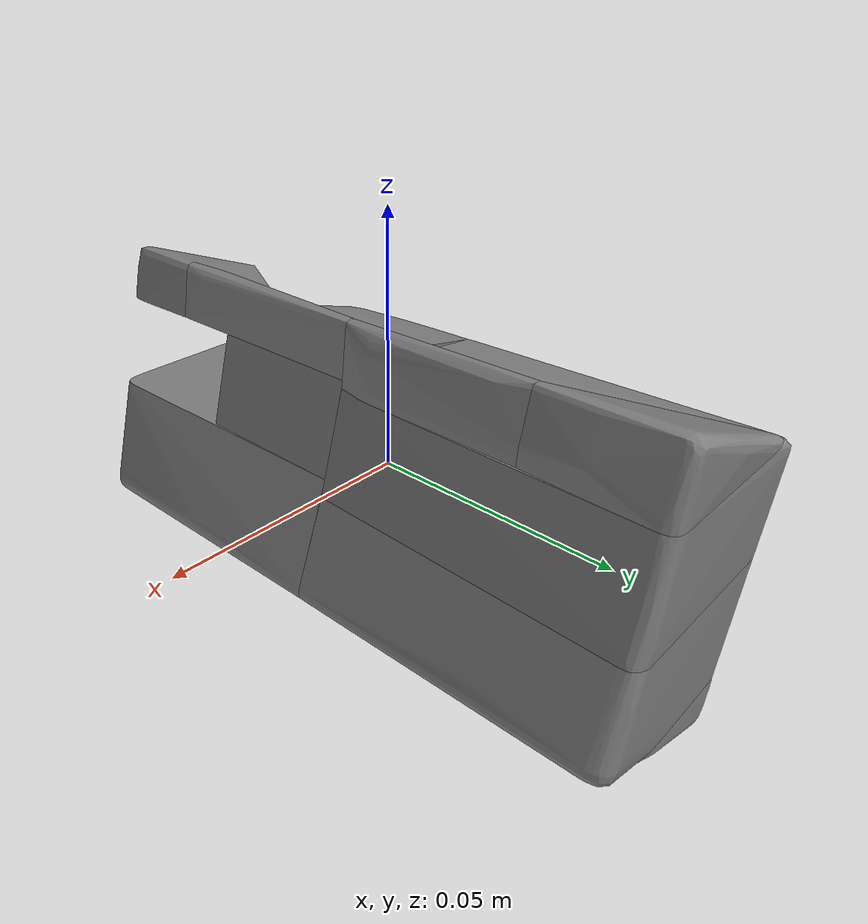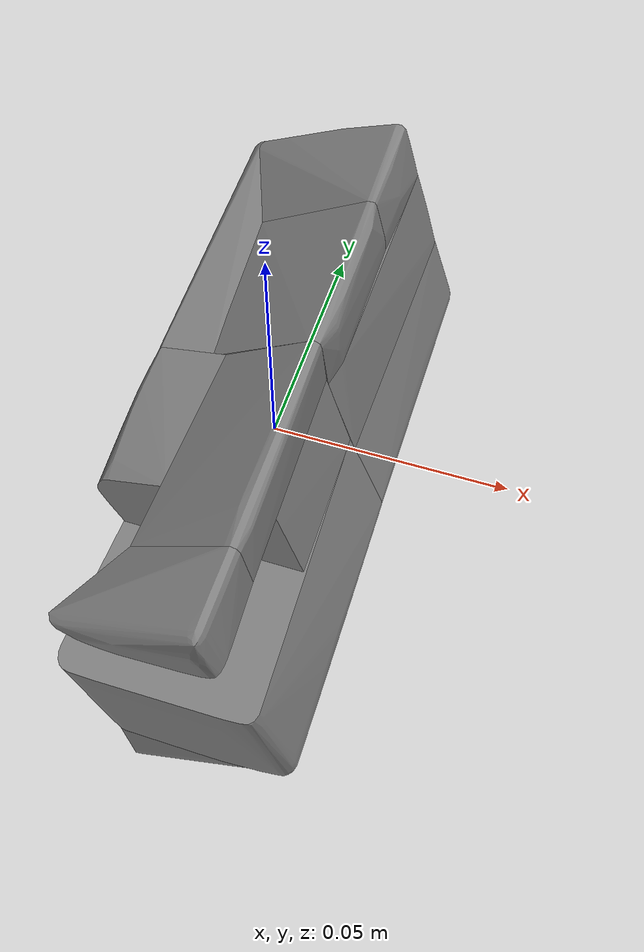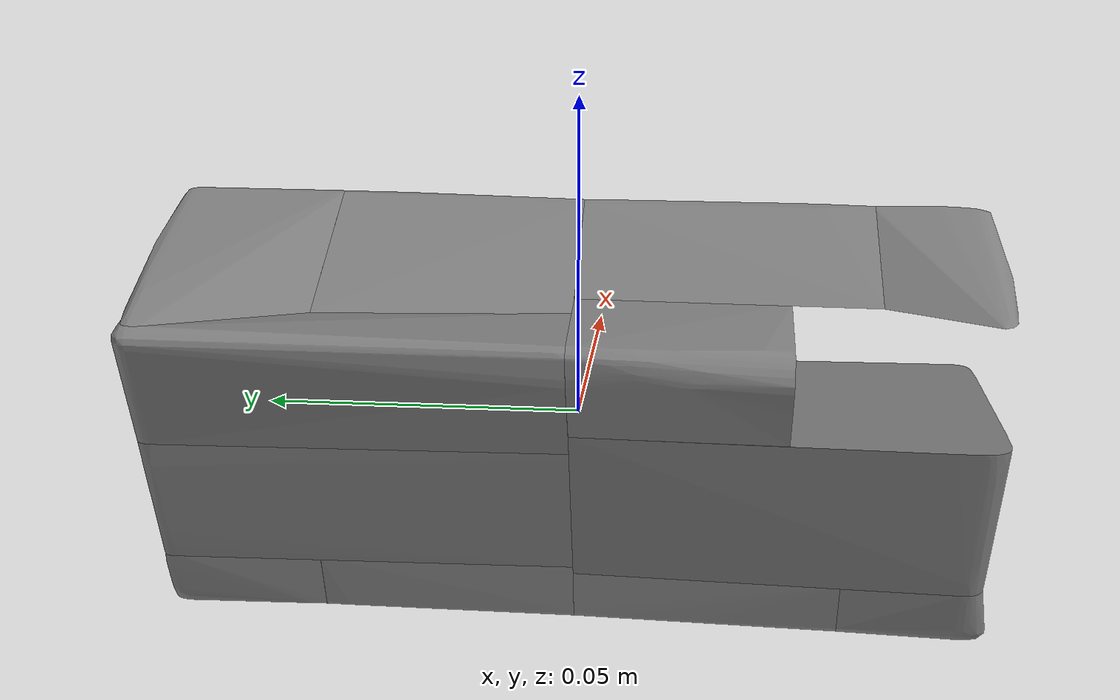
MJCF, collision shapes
<mujoco model="box_long_brown_M">
  <default>
    <default class="visual">
      <geom group="2" type="mesh" contype="0" conaffinity="0" />
    </default>
    <default class="collision">
      <geom group="3" type="mesh" />
    </default>
  </default>
  <asset>
    <mesh file="box_long_brown_M.stl" />
    <mesh file="box_long_brown_M_collision_0.stl" />
    <mesh file="box_long_brown_M_collision_1.stl" />
    <mesh file="box_long_brown_M_collision_2.stl" />
    <mesh file="box_long_brown_M_collision_3.stl" />
    <mesh file="box_long_brown_M_collision_4.stl" />
    <mesh file="box_long_brown_M_collision_5.stl" />
    <mesh file="box_long_brown_M_collision_6.stl" />
    <mesh file="box_long_brown_M_collision_7.stl" />
    <mesh file="box_long_brown_M_collision_8.stl" />
    <mesh file="box_long_brown_M_collision_9.stl" />
    <mesh file="box_long_brown_M_collision_10.stl" />
    <mesh file="box_long_brown_M_collision_11.stl" />
  </asset>
    <worldbody>
    <body name="box_long_brown_M">
      <geom mesh="box_long_brown_M" class="visual" />
      <geom mesh="box_long_brown_M_collision_0" class="collision" />
      <geom mesh="box_long_brown_M_collision_1" class="collision" />
      <geom mesh="box_long_brown_M_collision_2" class="collision" />
      <geom mesh="box_long_brown_M_collision_3" class="collision" />
      <geom mesh="box_long_brown_M_collision_4" class="collision" />
      <geom mesh="box_long_brown_M_collision_5" class="collision" />
      <geom mesh="box_long_brown_M_collision_6" class="collision" />
      <geom mesh="box_long_brown_M_collision_7" class="collision" />
      <geom mesh="box_long_brown_M_collision_8" class="collision" />
      <geom mesh="box_long_brown_M_collision_9" class="collision" />
      <geom mesh="box_long_brown_M_collision_10" class="collision" />
      <geom mesh="box_long_brown_M_collision_11" class="collision" />
    </body>
  </worldbody>
</mujoco>
